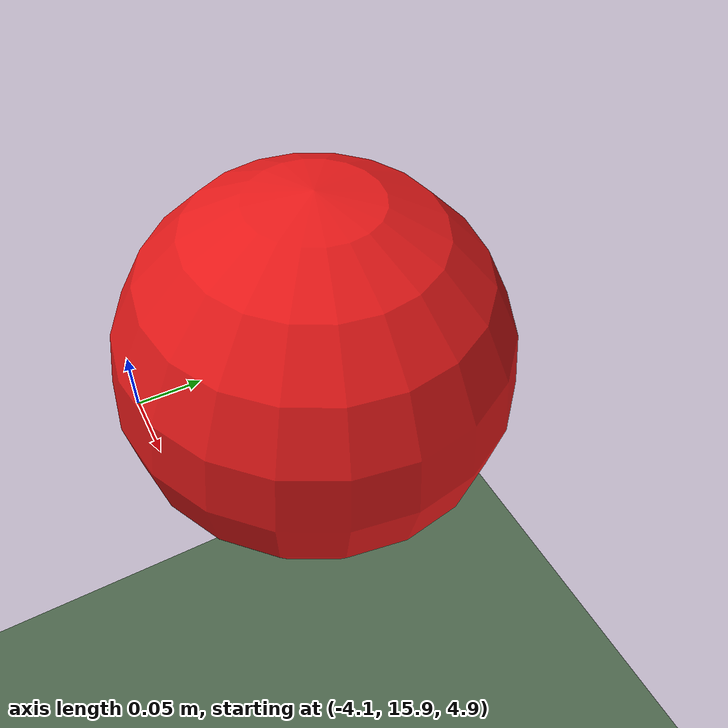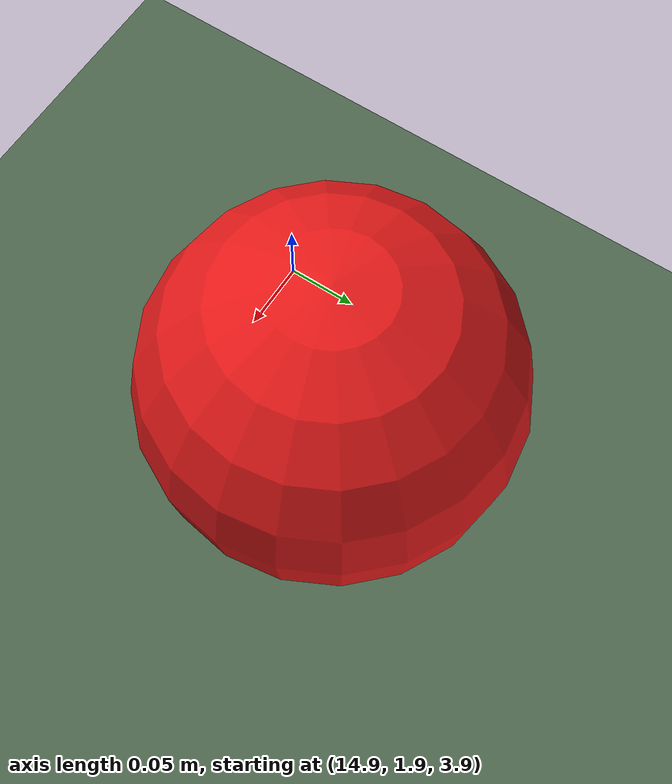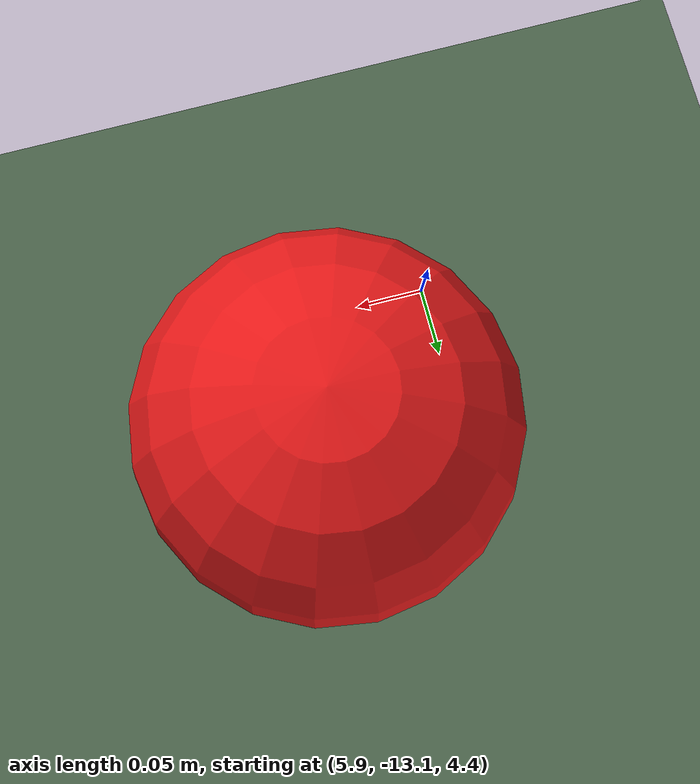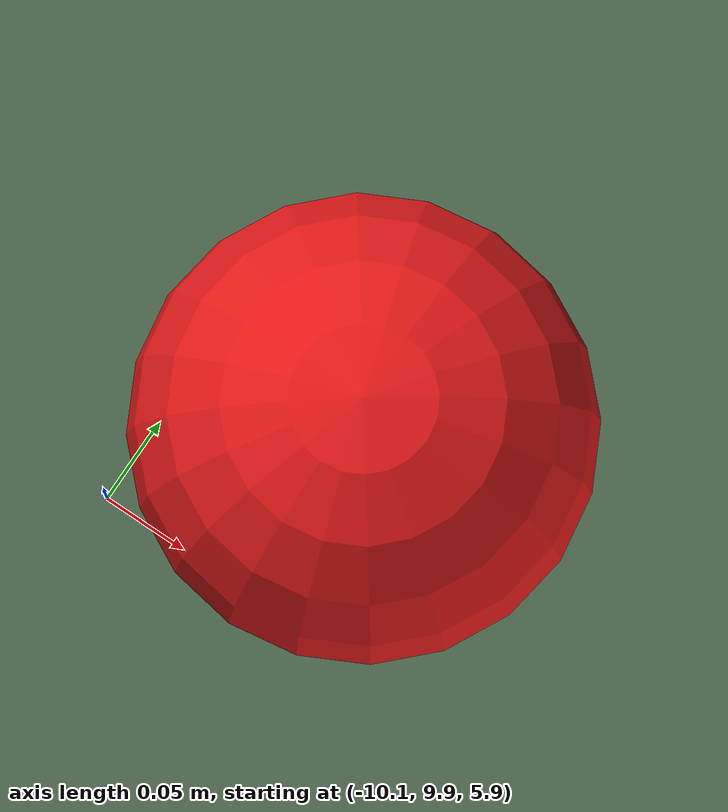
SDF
<?xml version="1.0" ?>
<sdf version="1.9">
  <world name="riposte_balloon">
    <physics name="1ms" type="ignored">
      <max_step_size>0.004</max_step_size>
      <real_time_factor>1.0</real_time_factor>
    </physics>

    <plugin filename="gz-sim-physics-system" name="gz::sim::systems::Physics"/>
    <plugin filename="gz-sim-user-commands-system"
            name="gz::sim::systems::UserCommands"/>
    <plugin filename="gz-sim-scene-broadcaster-system"
            name="gz::sim::systems::SceneBroadcaster"/>
    <plugin filename="gz-sim-sensors-system" name="gz::sim::systems::Sensors">
      <render_engine>ogre2</render_engine>
    </plugin>
    <plugin filename="gz-sim-imu-system" name="gz::sim::systems::Imu"/>
    <plugin filename="gz-sim-magnetometer-system" name="gz::sim::systems::Magnetometer"/>
    <plugin filename="gz-sim-air-pressure-system"
            name="gz::sim::systems::AirPressure"/>
    <plugin filename="gz-sim-navsat-system" name="gz::sim::systems::NavSat"/>

    <!-- PX4 GPS origin (matches PX4 default SITL home). The OBC's SM-10 fence is
         resolved from telemetry at engage, so it lands on whatever this is. -->
    <spherical_coordinates>
      <surface_model>EARTH_WGS84</surface_model>
      <world_frame_orientation>ENU</world_frame_orientation>
      <latitude_deg>47.397971057728974</latitude_deg>
      <longitude_deg>8.546163739800146</longitude_deg>
      <elevation>0</elevation>
    </spherical_coordinates>

    <light type="directional" name="sun">
      <cast_shadows>true</cast_shadows>
      <pose>0 0 10 0 0 0</pose>
      <diffuse>0.8 0.8 0.8 1</diffuse>
      <specular>0.2 0.2 0.2 1</specular>
      <direction>-0.5 0.1 -0.9</direction>
    </light>

    <model name="ground_plane">
      <static>true</static>
      <link name="link">
        <collision name="collision">
          <geometry><plane><normal>0 0 1</normal><size>200 200</size></plane></geometry>
        </collision>
        <visual name="visual">
          <geometry><plane><normal>0 0 1</normal><size>200 200</size></plane></geometry>
          <material>
            <ambient>0.3 0.35 0.3 1</ambient>
            <diffuse>0.3 0.4 0.3 1</diffuse>
          </material>
        </visual>
      </link>
    </model>

    <model name="balloon_1">
      <static>true</static>
      <pose>15 2 4 0 0 0</pose>
      <link name="body">
        <visual name="skin">
          <geometry><sphere><radius>0.125</radius></sphere></geometry>
          <material>
            <ambient>0.7 0.05 0.05 1</ambient>
            <diffuse>0.9 0.1 0.1 1</diffuse>
          </material>
        </visual>
      </link>
    </model>

    <model name="balloon_2">
      <static>true</static>
      <pose>-4 16 5 0 0 0</pose>
      <link name="body">
        <visual name="skin">
          <geometry><sphere><radius>0.125</radius></sphere></geometry>
          <material>
            <ambient>0.7 0.05 0.05 1</ambient>
            <diffuse>0.9 0.1 0.1 1</diffuse>
          </material>
        </visual>
      </link>
    </model>

    <model name="balloon_3">
      <static>true</static>
      <pose>-14 -9 3.5 0 0 0</pose>
      <link name="body">
        <visual name="skin">
          <geometry><sphere><radius>0.125</radius></sphere></geometry>
          <material>
            <ambient>0.7 0.05 0.05 1</ambient>
            <diffuse>0.9 0.1 0.1 1</diffuse>
          </material>
        </visual>
      </link>
    </model>

    <model name="balloon_4">
      <static>true</static>
      <pose>6 -13 4.5 0 0 0</pose>
      <link name="body">
        <visual name="skin">
          <geometry><sphere><radius>0.125</radius></sphere></geometry>
          <material>
            <ambient>0.7 0.05 0.05 1</ambient>
            <diffuse>0.9 0.1 0.1 1</diffuse>
          </material>
        </visual>
      </link>
    </model>

    <!-- Near the eastern boundary: approaching this one must trip the patrol's
         turn-away margin rather than carry the vehicle over the fence (T-5). -->
    <model name="balloon_5">
      <static>true</static>
      <pose>23 -3 4 0 0 0</pose>
      <link name="body">
        <visual name="skin">
          <geometry><sphere><radius>0.125</radius></sphere></geometry>
          <material>
            <ambient>0.7 0.05 0.05 1</ambient>
            <diffuse>0.9 0.1 0.1 1</diffuse>
          </material>
        </visual>
      </link>
    </model>

    <model name="balloon_6">
      <static>true</static>
      <pose>-10 10 6 0 0 0</pose>
      <link name="body">
        <visual name="skin">
          <geometry><sphere><radius>0.125</radius></sphere></geometry>
          <material>
            <ambient>0.7 0.05 0.05 1</ambient>
            <diffuse>0.9 0.1 0.1 1</diffuse>
          </material>
        </visual>
      </link>
    </model>
  </world>
</sdf>
